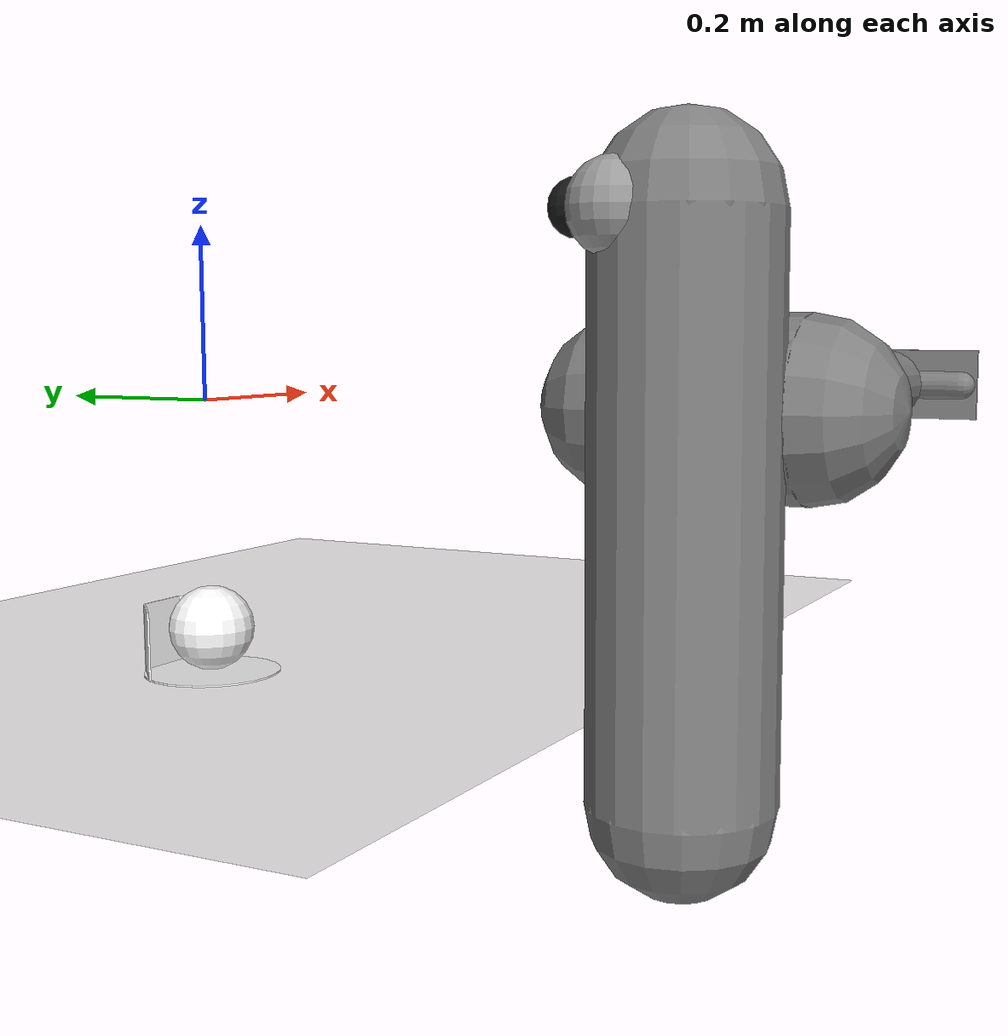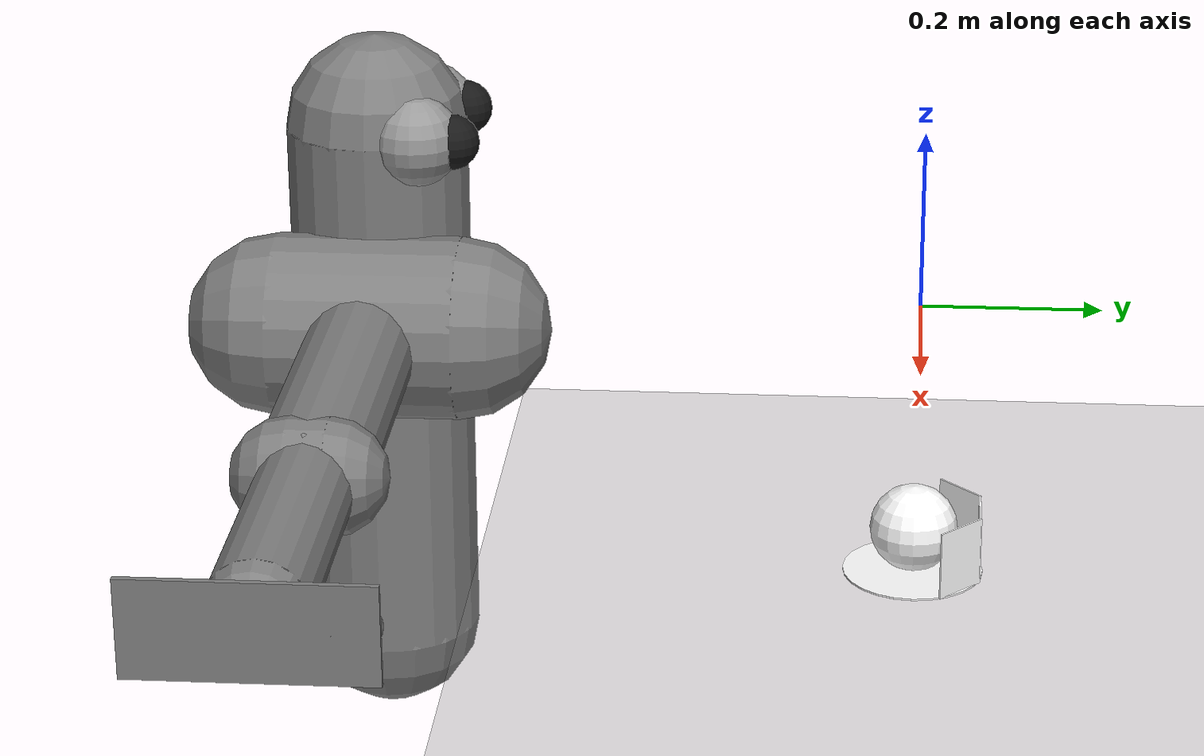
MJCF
<mujoco model="arm3d">
    <compiler inertiafromgeom="true" angle="radian" coordinate="local"/>
    <option timestep="0.01" gravity="0 0 0" iterations="20" integrator="Euler"/>

    <default>
        <joint armature='0.04' damping="1" limited="true"/>
        <geom friction=".0 .0 .0" density="300" margin="0.002" condim="1" contype="0" conaffinity="0"/>
    </default>

    <worldbody>
        <light diffuse=".5 .5 .5" pos="0 0 3" dir="0 0 -1"/>
        <geom name="table" type="plane" pos="0 0.5 -0.325" size="1 1 0.1" contype="1" conaffinity="1"/>

        <body name="r_shoulder_pan_link" pos="0 -0.6 0">
            <geom name="e1" type="sphere" rgba="0.6 0.6 0.6 1" pos="-0.06 0.05 0.2" size="0.05"/>
            <geom name="e2" type="sphere" rgba="0.6 0.6 0.6 1" pos=" 0.06 0.05 0.2" size="0.05"/>
            <geom name="e1p" type="sphere" rgba="0.1 0.1 0.1 1" pos="-0.06 0.09 0.2" size="0.03"/>
            <geom name="e2p" type="sphere" rgba="0.1 0.1 0.1 1" pos=" 0.06 0.09 0.2" size="0.03"/>
            <geom name="sp" type="capsule" fromto="0 0 -0.4 0 0 0.2" size="0.1"/>
            <joint name="r_shoulder_pan_joint" type="hinge" pos="0 0 0" axis="0 0 1" range="-2.2854 1.714602"
                   damping="1.0"/>

            <body name="r_shoulder_lift_link" pos="0.1 0 0">
                <geom name="sl" type="capsule" fromto="0 -0.1 0 0 0.1 0" size="0.1"/>
                <joint name="r_shoulder_lift_joint" type="hinge" pos="0 0 0" axis="0 1 0" range="-0.5236 1.3963"
                       damping="1.0"/>

                <body name="r_upper_arm_roll_link" pos="0 0 0">
                    <geom name="uar" type="capsule" fromto="-0.1 0 0 0.1 0 0" size="0.02"/>
                    <joint name="r_upper_arm_roll_joint" type="hinge" pos="0 0 0" axis="1 0 0" range="-1.5 1.7"
                           damping="0.1"/>

                    <body name="r_upper_arm_link" pos="0 0 0">
                        <geom name="ua" type="capsule" fromto="0 0 0 0.4 0 0" size="0.06"/>

                        <body name="r_elbow_flex_link" pos="0.4 0 0">
                            <geom name="ef" type="capsule" fromto="0 -0.02 0 0.0 0.02 0" size="0.06"/>
                            <joint name="r_elbow_flex_joint" type="hinge" pos="0 0 0" axis="0 1 0" range="-2.3213 0"
                                   damping="0.1"/>

                            <body name="r_forearm_roll_link" pos="0 0 0">
                                <geom name="fr" type="capsule" fromto="-0.1 0 0 0.1 0 0" size="0.02"/>
                                <joint name="r_forearm_roll_joint" type="hinge" limited="true" pos="0 0 0" axis="1 0 0"
                                       damping=".1" range="-1.5 1.5"/>

                                <body name="r_forearm_link" pos="0 0 0">
                                    <geom name="fa" type="capsule" fromto="0 0 0 0.291 0 0" size="0.05"/>

                                    <body name="r_wrist_flex_link" pos="0.321 0 0">
                                        <geom name="wf" type="capsule" fromto="0 -0.02 0 0 0.02 0" size="0.01"/>
                                        <joint name="r_wrist_flex_joint" type="hinge" pos="0 0 0" axis="0 1 0"
                                               range="-1.094 0" damping=".1"/>

                                        <body name="r_wrist_roll_link" pos="0 0 0">
                                            <joint name="r_wrist_roll_joint" type="hinge" pos="0 0 0" limited="true"
                                                   axis="1 0 0" damping="0.1" range="-1.5 1.5"/>

                                            <body name="tips_arm" pos="0 0 0">
                                                <geom conaffinity="1" contype="1" name="tip_arml" pos="0.017 0 0"
                                                      size="0.003 0.12 0.05" type="box"/>

                                            </body>
                                            <geom conaffinity="1" contype="1" fromto="0 -0.1 0. 0.0 +0.1 0" size="0.02"
                                                  type="capsule"/>
                                        </body>
                                    </body>
                                </body>
                            </body>
                        </body>
                    </body>
                </body>
            </body>
        </body>

        <body name="object" pos="0 0 -0.270">
            <geom type="sphere" rgba="1 1 1 1" pos="0 0 0" size="0.05 0.05 0.05" contype="1" conaffinity="0"/>
            <joint name="obj_slidey" armature="0.1" type="slide" pos="0 0 0" axis="0 1 0" range="-10.3213 10.3"
                   damping="0.5"/>
            <joint name="obj_slidex" armature="0.1" type="slide" pos="0 0 0" axis="1 0 0" range="-10.3213 10.3"
                   damping="0.5"/>
        </body>

        <body name="goal" pos="0.0 0.0 -0.3230">
            <geom rgba="1. 1. 1. 0" pos="0 0 0" type="box" size="0.01 0.01 0.01" contype="0" conaffinity="0"/>
            <body pos="0 0 0">
                <geom rgba="1. 1. 1. 1" pos="0 0.075 0.04" type="box" size="0.032 0.001 0.04" contype="0"
                      conaffinity="1"/>
            </body>
            <body name="coaster" pos="0 0 0">
                <geom rgba="1. 1. 1. 1" type="cylinder" size="0.08 0.001 0.1" density='1000000' contype="0"
                      conaffinity="0"/>
            </body>
            <body pos="0 0 0" axisangle="0 0 1 0.785">
                <geom rgba="1. 1. 1. 1" pos="0 0.075 0.04" type="box" size="0.032 0.001 0.04" contype="0"
                      conaffinity="1"/>
            </body>
            <body pos="0 0 0" axisangle="0 0 1 -0.785">
                <geom rgba="1. 1. 1. 1" pos="0 0.075 0.04" type="box" size="0.032 0.001 0.04" contype="0"
                      conaffinity="1"/>
            </body>
            <joint name="goal_free" type="free" pos="0 0 0" limited="false" damping="0"/>
        </body>
    </worldbody>

    <actuator>
        <motor joint="r_shoulder_pan_joint" ctrlrange="-3.0 3.0" ctrllimited="true"/>
        <motor joint="r_shoulder_lift_joint" ctrlrange="-3.0 3.0" ctrllimited="true"/>
        <motor joint="r_upper_arm_roll_joint" ctrlrange="-3.0 3.0" ctrllimited="true"/>
        <motor joint="r_elbow_flex_joint" ctrlrange="-3.0 3.0" ctrllimited="true"/>
        <motor joint="r_forearm_roll_joint" ctrlrange="-3.0 3.0" ctrllimited="true"/>
        <motor joint="r_wrist_flex_joint" ctrlrange="-3.0 3.0" ctrllimited="true"/>
        <motor joint="r_wrist_roll_joint" ctrlrange="-3.0 3.0" ctrllimited="true"/>
    </actuator>

</mujoco>
